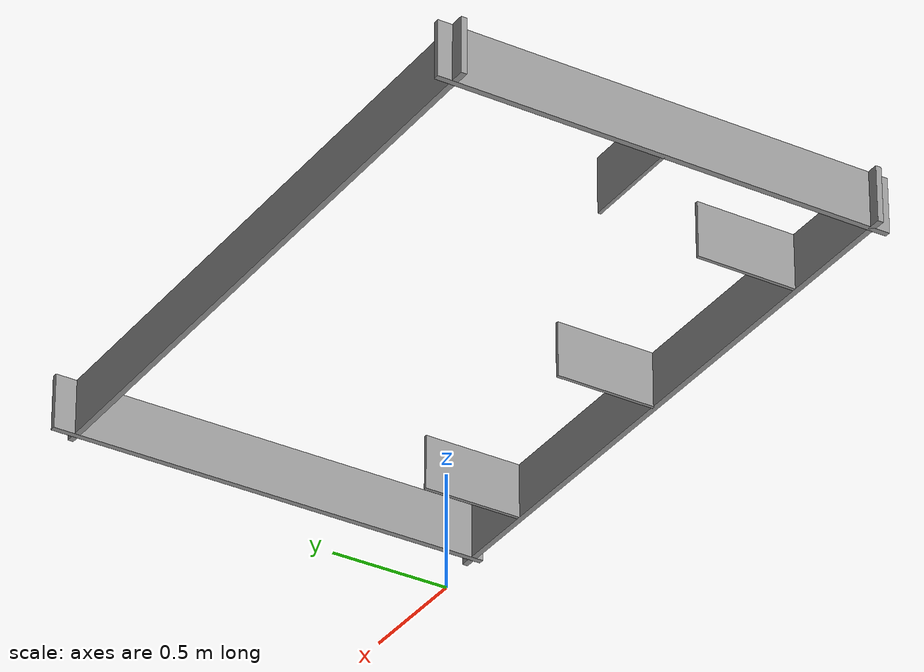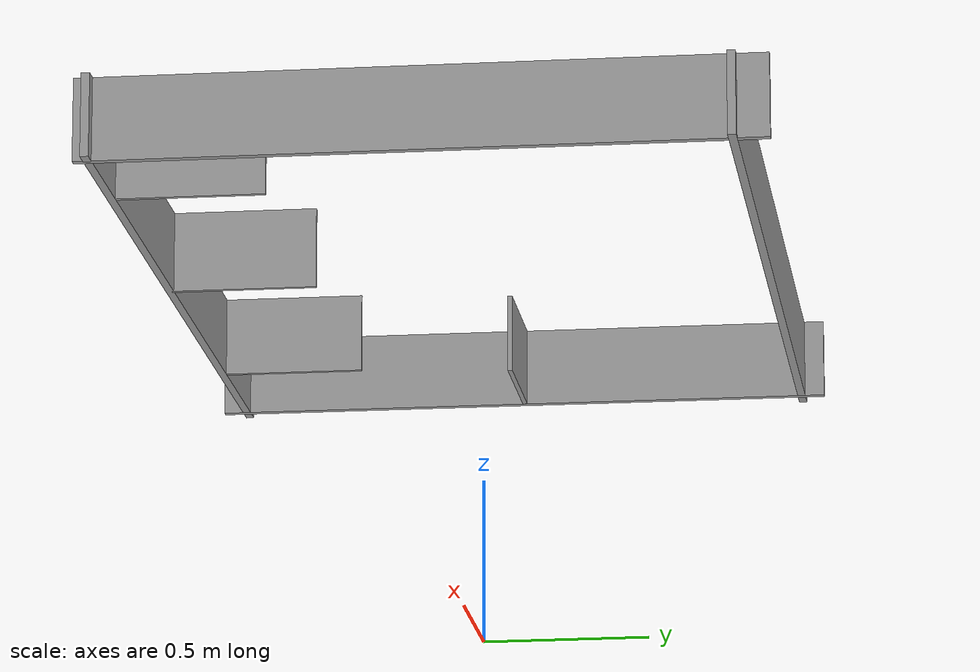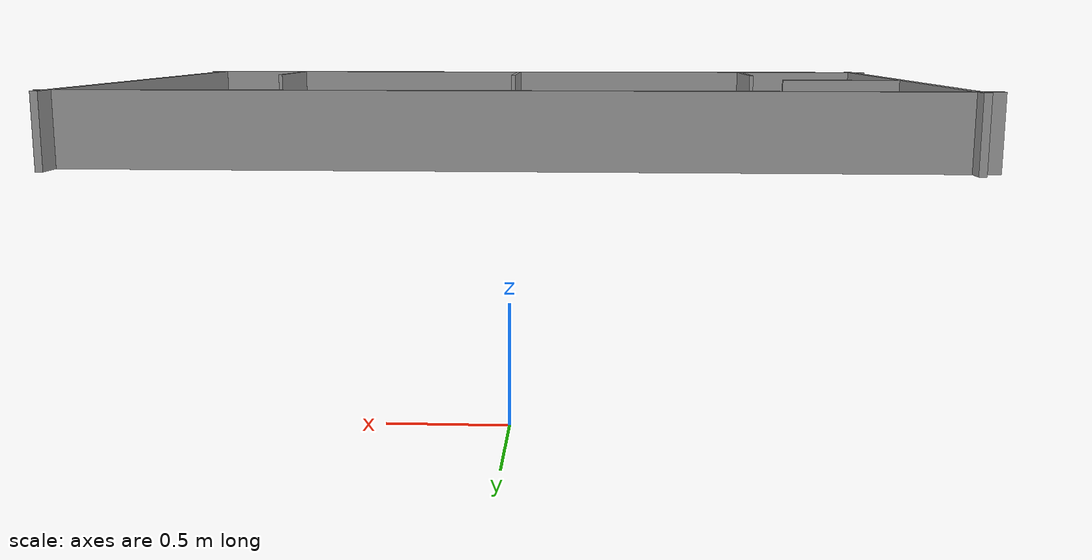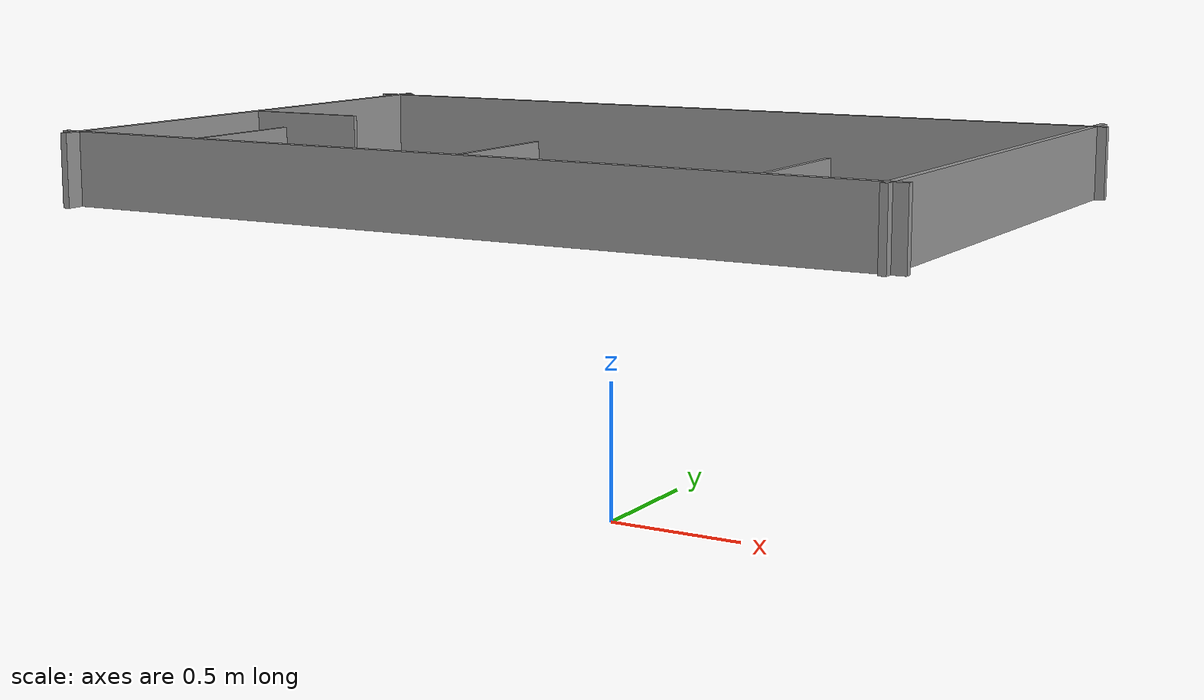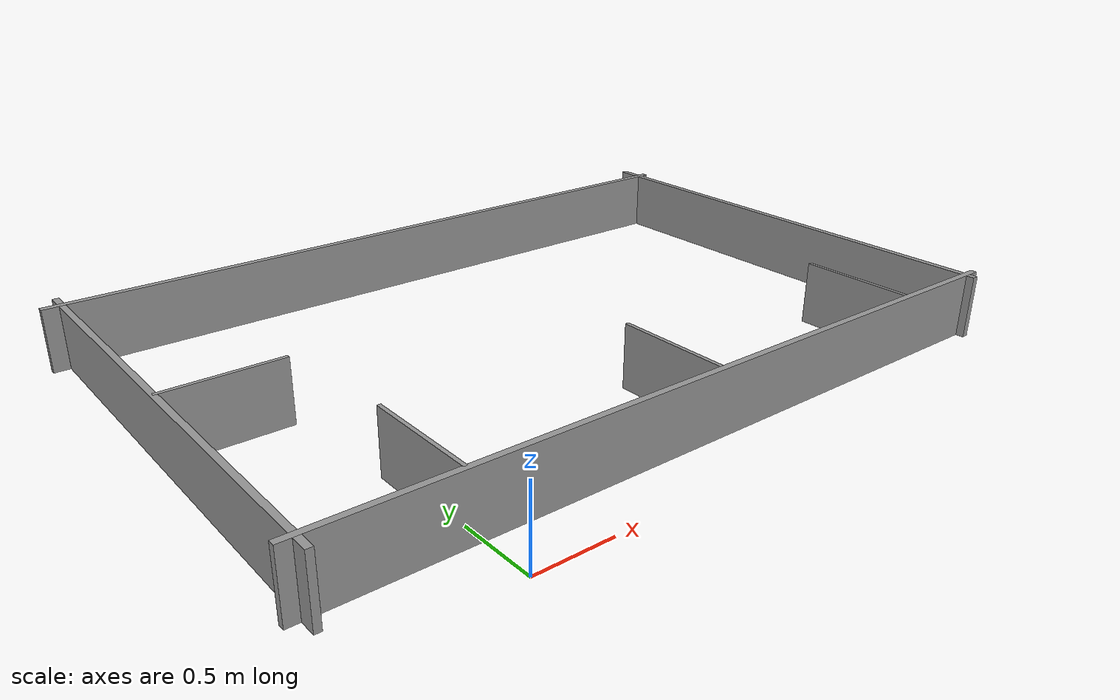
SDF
<?xml version='1.0'?>
<sdf version='1.7'>
  <model name='walls'>
    <static>true</static>
    <pose>0.188061 -0.039622 0 0 -0 0</pose>
    <link name='Wall_0'>
      <collision name='Wall_0_Collision'>
        <geometry>
          <box>
            <size>3 0.025 0.25</size>
          </box>
        </geometry>
        <pose>0 0 1.25 0 -0 0</pose>
      </collision>
      <visual name='Wall_0_Visual'>
        <pose>0 0 1.25 0 -0 0</pose>
        <geometry>
          <box>
            <size>3 0.025 0.25</size>
          </box>
        </geometry>
        <material>
          <script>
            <uri>file://media/materials/scripts/gazebo.material</uri>
            <name>Gazebo/Grey</name>
          </script>
          <ambient>1 1 1 1</ambient>
        </material>
        <meta>
          <layer>0</layer>
        </meta>
      </visual>
      <pose>-0.234611 -0.933428 0 0 -0 3.14159</pose>
    </link>
    <link name='Wall_1'>
      <collision name='Wall_1_Collision'>
        <geometry>
          <box>
            <size>2 0.025 0.25</size>
          </box>
        </geometry>
        <pose>0 0 1.25 0 -0 0</pose>
      </collision>
      <visual name='Wall_1_Visual'>
        <pose>0 0 1.25 0 -0 0</pose>
        <geometry>
          <box>
            <size>2 0.025 0.25</size>
          </box>
        </geometry>
        <material>
          <script>
            <uri>file://media/materials/scripts/gazebo.material</uri>
            <name>Gazebo/Grey</name>
          </script>
          <ambient>1 1 1 1</ambient>
        </material>
        <meta>
          <layer>0</layer>
        </meta>
      </visual>
      <pose>-1.67284 -0.008428 0 0 -0 1.5708</pose>
    </link>
    <link name='Wall_11'>
      <collision name='Wall_11_Collision'>
        <geometry>
          <box>
            <size>0.45 0.015 0.25</size>
          </box>
        </geometry>
        <pose>0 0 1.25 0 -0 0</pose>
      </collision>
      <visual name='Wall_11_Visual'>
        <pose>0 0 1.25 0 -0 0</pose>
        <geometry>
          <box>
            <size>0.45 0.015 0.25</size>
          </box>
        </geometry>
        <material>
          <script>
            <uri>file://media/materials/scripts/gazebo.material</uri>
            <name>Gazebo/Grey</name>
          </script>
          <ambient>1 1 1 1</ambient>
        </material>
        <meta>
          <layer>0</layer>
        </meta>
      </visual>
      <pose>-0.17 -0.702485 0 0 -0 -1.5708</pose>
    </link>
    <link name='Wall_111'>
      <collision name='Wall_111_Collision'>
        <geometry>
          <box>
            <size>0.45 0.015 0.25</size>
          </box>
        </geometry>
        <pose>0 0 1.25 0 -0 0</pose>
      </collision>
      <visual name='Wall_111_Visual'>
        <pose>0 0 1.25 0 -0 0</pose>
        <geometry>
          <box>
            <size>0.45 0.015 0.25</size>
          </box>
        </geometry>
        <material>
          <script>
            <uri>file://media/materials/scripts/gazebo.material</uri>
            <name>Gazebo/Grey</name>
          </script>
          <ambient>1 1 1 1</ambient>
        </material>
        <meta>
          <layer>0</layer>
        </meta>
      </visual>
      <pose>0.83 -0.702485 0 0 -0 -1.5708</pose>
    </link>
    <link name='Wall_13'>
      <collision name='Wall_13_Collision'>
        <geometry>
          <box>
            <size>0.45 0.015 0.25</size>
          </box>
        </geometry>
        <pose>0 0 1.25 0 -0 0</pose>
      </collision>
      <visual name='Wall_13_Visual'>
        <pose>0 0 1.25 0 -0 0</pose>
        <geometry>
          <box>
            <size>0.45 0.015 0.25</size>
          </box>
        </geometry>
        <material>
          <script>
            <uri>file://media/materials/scripts/gazebo.material</uri>
            <name>Gazebo/Grey</name>
          </script>
          <ambient>1 1 1 1</ambient>
        </material>
        <meta>
          <layer>0</layer>
        </meta>
      </visual>
      <pose>-1.45 0.0 0 0 -0 0</pose>
    </link>
    <link name='Wall_2'>
      <collision name='Wall_2_Collision'>
        <geometry>
          <box>
            <size>3 0.025 0.25</size>
          </box>
        </geometry>
        <pose>0 0 1.25 0 -0 0</pose>
      </collision>
      <visual name='Wall_2_Visual'>
        <pose>0 0 1.25 0 -0 0</pose>
        <geometry>
          <box>
            <size>3 0.025 0.25</size>
          </box>
        </geometry>
        <material>
          <script>
            <uri>file://media/materials/scripts/gazebo.material</uri>
            <name>Gazebo/Grey</name>
          </script>
          <ambient>1 1 1 1</ambient>
        </material>
        <meta>
          <layer>0</layer>
        </meta>
      </visual>
      <pose>-0.247836 0.916572 0 0 -0 0</pose>
    </link>
    <link name='Wall_3'>
      <collision name='Wall_3_Collision'>
        <geometry>
          <box>
            <size>2 0.025 0.25</size>
          </box>
        </geometry>
        <pose>0 0 1.25 0 -0 0</pose>
      </collision>
      <visual name='Wall_3_Visual'>
        <pose>0 0 1.25 0 -0 0</pose>
        <geometry>
          <box>
            <size>2 0.025 0.25</size>
          </box>
        </geometry>
        <material>
          <script>
            <uri>file://media/materials/scripts/gazebo.material</uri>
            <name>Gazebo/Grey</name>
          </script>
          <ambient>1 1 1 1</ambient>
        </material>
        <meta>
          <layer>0</layer>
        </meta>
      </visual>
      <pose>1.20657 0.023091 0 0 -0 1.5708</pose>
    </link>
    <link name='Wall_9'>
      <collision name='Wall_9_Collision'>
        <geometry>
          <box>
            <size>0.45 0.015 0.25</size>
          </box>
        </geometry>
        <pose>0 0 1.25 0 -0 0</pose>
      </collision>
      <visual name='Wall_9_Visual'>
        <pose>0 0 1.25 0 -0 0</pose>
        <geometry>
          <box>
            <size>0.45 0.015 0.25</size>
          </box>
        </geometry>
        <material>
          <script>
            <uri>file://media/materials/scripts/gazebo.material</uri>
            <name>Gazebo/Grey</name>
          </script>
          <ambient>1 1 1 1</ambient>
        </material>
        <meta>
          <layer>0</layer>
        </meta>
      </visual>
      <pose>-1.17 -0.702485 0 0 -0 1.5708</pose>
    </link>
    <static>1</static>
  </model>
</sdf>
